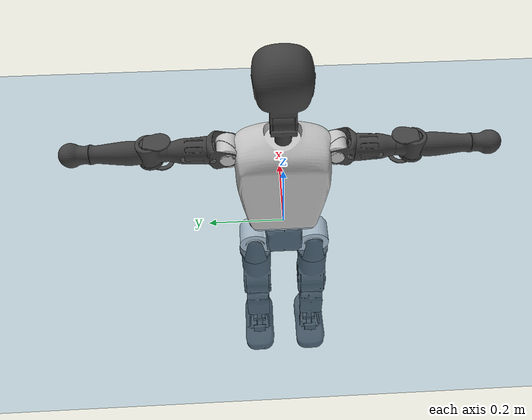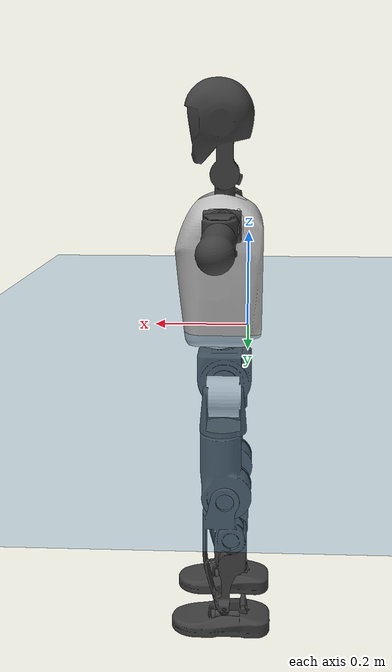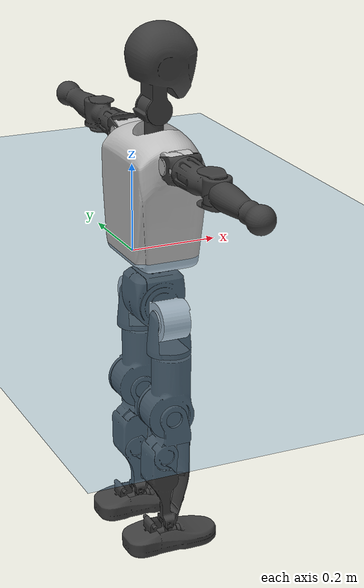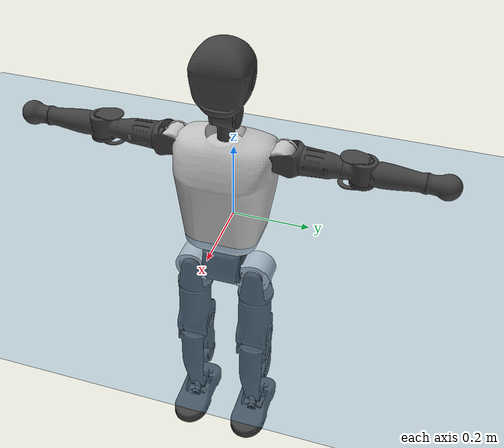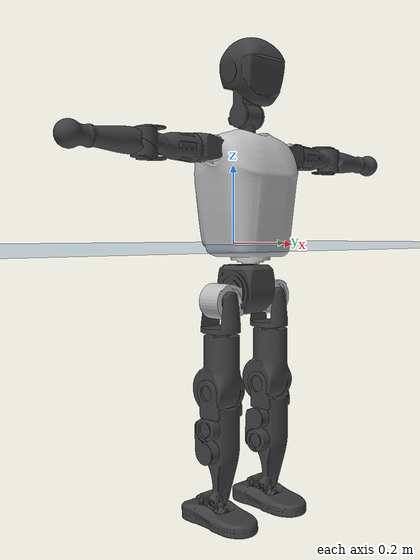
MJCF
<mujoco model="T1">
  <compiler angle="radian" assetdir="assets" balanceinertia="true" inertiafromgeom="false"/>

  <option timestep="0.005" density="1.2" viscosity="2e-05"/>

  <size nkey="1"/>

  <visual>
    <quality shadowsize="8192"/>
    <map shadowclip="0.5"/>
  </visual>

  <default>
    <default class="/">
      <joint armature="0.01" damping="0.01" frictionloss="0.1"/>
      <geom contype="0" conaffinity="0" group="1" solref="-1000 -80"/>
      <site size="0.01 0.005 0.005" group="5"/>
      <general forcelimited="true" biastype="affine" gainprm="25" biasprm="0 -25 -0.6"/>
      <default class="t1">
        <geom rgba="0.25 0.25 0.25 1"/>
        <default class="visual">
          <geom type="mesh" group="2"/>
        </default>
        <default class="collision">
          <geom group="3"/>
        </default>
        <default class="foot">
          <geom size="0.1115 0.05 0.015" type="box" condim="6" group="4" priority="1" solimp="0.015 1 0.015"/>
        </default>
        <default class="reward_collision_sphere">
          <geom group="5" rgba="1 0 0 1"/>
        </default>
      </default>
    </default>
  </default>

  <asset>
    <texture type="skybox" colorspace="auto" name="//unnamed_texture_0" builtin="gradient" rgb1="0.95 0.95 0.95" rgb2="0.95 0.95 0.95" width="100" height="600"/>
    <texture type="2d" colorspace="auto" name="texplane" builtin="checker" rgb1="0.345 0.575 0.748" rgb2="0.345 0.575 0.748" markrgb="1 1 1" width="512" height="512"/>
    <material name="MatPlane" class="/" texture="texplane" texuniform="true" texrepeat="2 2" specular="0.9"/>
    <mesh name="Trunk" class="/" file="Trunk.stl"/>
    <mesh name="H1" class="/" file="H1.stl"/>
    <mesh name="H2" class="/" file="H2.stl"/>
    <mesh name="AL1" class="/" file="AL1.stl"/>
    <mesh name="AL2" class="/" file="AL2.stl"/>
    <mesh name="AL3" class="/" file="AL3.stl"/>
    <mesh name="left_hand_link" class="/" file="left_hand_link.stl"/>
    <mesh name="AR1" class="/" file="AR1.stl"/>
    <mesh name="AR2" class="/" file="AR2.stl"/>
    <mesh name="AR3" class="/" file="AR3.stl"/>
    <mesh name="right_hand_link" class="/" file="right_hand_link.stl"/>
    <mesh name="Waist" class="/" file="Waist.stl"/>
    <mesh name="Hip_Pitch_Left" class="/" file="Hip_Pitch_Left.stl"/>
    <mesh name="Hip_Roll_Left" class="/" file="Hip_Roll_Left.stl"/>
    <mesh name="Hip_Yaw_Left" class="/" file="Hip_Yaw_Left.stl"/>
    <mesh name="Shank_Left" class="/" file="Shank_Left.stl"/>
    <mesh name="Ankle_Cross_Left" class="/" file="Ankle_Cross_Left.stl"/>
    <mesh name="left_foot_link" class="/" file="left_foot_link.stl"/>
    <mesh name="Hip_Pitch_Right" class="/" file="Hip_Pitch_Right.stl"/>
    <mesh name="Hip_Roll_Right" class="/" file="Hip_Roll_Right.stl"/>
    <mesh name="Hip_Yaw_Right" class="/" file="Hip_Yaw_Right.stl"/>
    <mesh name="Shank_Right" class="/" file="Shank_Right.stl"/>
    <mesh name="Ankle_Cross_Right" class="/" file="Ankle_Cross_Right.stl"/>
    <mesh name="right_foot_link" class="/" file="right_foot_link.stl"/>
  </asset>

  <worldbody>
    <geom name="floor" class="/" size="100 100 0.125" type="plane" group="0" material="MatPlane"/>
    <light name="toplight_shadow" class="/" pos="0 0 5" dir="0.0990148 0.0990148 -0.990148" type="directional" ambient="0.04 0.04 0.04" diffuse="0.55 0.55 0.55" specular="0.12 0.12 0.12"/>
    <light name="toplight_fill" class="/" pos="0 0 5" dir="0.0990148 0.0990148 -0.990148" type="directional" castshadow="false" ambient="0.04 0.04 0.04" diffuse="0.3 0.3 0.3" specular="0.08 0.08 0.08"/>
    <body name="trunk" childclass="t1" pos="0.000162457 -0.000797978 0.00170691" quat="1 8.46973e-06 -1.32053e-06 -2.00589e-05">
      <inertial pos="0.0455988 -0.00237167 0.110172" quat="0.999952 0.00338161 -0.00920729 0.000870029" mass="8.40864" diaginertia="0.034898 0.0277708 0.0697581"/>
      <joint name="//unnamed_joint_0" type="free" armature="0" damping="0" frictionloss="0"/>
      <geom name="//unnamed_geom_1" class="visual" rgba="0.76 0.76 0.76 1" mesh="Trunk"/>
      <geom name="//unnamed_geom_2" class="collision" size="0.0670396 0.0893862 0.134079" pos="0.0493423 0 0.125337" type="box"/>
      <geom name="//unnamed_geom_3" class="reward_collision_sphere" size="0.102794" pos="0.0493423 0 0.104448"/>
      <geom name="//unnamed_geom_4" class="reward_collision_sphere" size="0.0134079" pos="0.0493423 0.0692527 0"/>
      <geom name="//unnamed_geom_5" class="reward_collision_sphere" size="0.0134079" pos="0.0493423 -0.0692527 0"/>
      <geom name="//unnamed_geom_6" class="reward_collision_sphere" size="0.0134079" pos="0.0493423 0.0871769 0.188006"/>
      <geom name="//unnamed_geom_7" class="reward_collision_sphere" size="0.0134079" pos="0.0493423 -0.0871769 0.188006"/>
      <site name="imu" pos="-0.000161971 0.0114407 0.0029134" size="0.00893862"/>
      <camera name="track" pos="0 -1.62947 0" quat="0.707107 0.707107 0 0" mode="trackcom"/>
      <camera name="ego_camera" pos="0.100329 0 0.43868" quat="-0.5 -0.5 0.5 0.5"/>
      <body name="H1" pos="0.0512575 -0.00105262 0.254306" quat="0.999999 0.000167902 0.000831959 -0.000654518">
        <inertial pos="-0.00133006 -0.000463657 0.0594119" quat="0.763979 -0.00919102 -0.000904465 0.645175" mass="0.311495" diaginertia="9.17457e-05 8.11247e-05 0.0001913"/>
        <joint name="AAHead_yaw" pos="0 0 0" axis="-0.00442643 -1.27319e-05 0.99999" range="-1.58125 1.62203" armature="0.00869886" damping="0.000322402" frictionloss="0.085287"/>
        <geom name="//unnamed_geom_8" class="visual" mesh="H1"/>
        <body name="H2" pos="-0.000384 0.000417036 0.0617975" quat="0.999999 0.00113458 -0.000623155 -0.000232395">
          <inertial pos="0.00584895 0.00132274 0.104552" quat="0.989038 0.104483 -0.070963 -0.0764889" mass="0.450026" diaginertia="0.000765847 0.000692628 0.002099"/>
          <joint name="Head_pitch" pos="0 0 0" axis="-0.00624973 -0.99997 0.00452155" range="-1.24254 0.351366" armature="0.00920759" damping="0.00700395" frictionloss="0.0909338"/>
          <geom name="//unnamed_geom_9" class="visual" mesh="H2"/>
          <geom name="//unnamed_geom_10" class="collision" size="0.0715089" pos="0.00822372 0 0.114892"/>
          <geom name="//unnamed_geom_11" class="reward_collision_sphere" size="0.0804476" pos="0.0164474 0 0.104448"/>
        </body>
      </body>
      <body name="AL1" pos="0.0492887 0.0881691 0.227982" quat="1 -5.23303e-05 0.000362071 -0.000384154">
        <inertial pos="-0.00161147 0.0358189 -1.00574e-05" quat="0.493721 0.499377 -0.506976 0.499838" mass="0.373208" diaginertia="0.000505044 0.000454894 0.000354294"/>
        <joint name="Left_Shoulder_Pitch" pos="0 0 0" axis="-0.00309376 0.99999 0.00337761" range="-3.25614 1.21633" armature="0.00830708" damping="0.00597391" frictionloss="0.0905031"/>
        <geom name="//unnamed_geom_12" class="visual" rgba="0.76 0.76 0.76 1" mesh="AL1"/>
        <body name="AL2" pos="0.00191705 0.0396267 0.000260793" quat="0.999999 -0.0011297 -0.000248347 0.000247805">
          <inertial pos="0.00584713 0.0311368 -0.000379498" quat="0.488244 0.51097 -0.489152 0.511134" mass="0.110239" diaginertia="0.000146111 0.000119807 0.000211191"/>
          <joint name="Left_Shoulder_Roll" pos="0 0 0" axis="-0.999997 -0.000384063 0.0024636" range="-1.57044 1.75837" armature="0.00943771" damping="0.0148624" frictionloss="0.089922"/>
          <geom name="//unnamed_geom_13" class="visual" mesh="AL2"/>
          <body name="AL3" pos="0.000295692 0.0500628 -0.000214022" quat="0.999999 -0.00106909 0.000181509 0.000436556">
            <inertial pos="0.00217192 0.068743 -0.000543968" quat="0.710395 0.703702 0.0118756 0.00100093" mass="0.753651" diaginertia="0.0050659 0.00490261 0.000802689"/>
            <joint name="Left_Elbow_Pitch" pos="0 0 0" axis="0.00402982 -0.999986 -0.00339343" range="-2.28443 2.32109" armature="0.00985178" damping="0.00971108" frictionloss="0.10113"/>
            <geom name="//unnamed_geom_14" class="visual" mesh="AL3"/>
            <geom name="//unnamed_geom_15" class="collision" size="0.0268159 0.0670396" pos="0 0.0407369 0" quat="0.707105 0.707108 0 0" type="cylinder"/>
            <geom name="//unnamed_geom_16" class="reward_collision_sphere" size="0.032179"/>
            <body name="left_hand_link" pos="0.000203825 0.119456 0.000199993" quat="0.999999 0.000872895 0.000384044 -0.000847735">
              <inertial pos="0.000921638 0.0908407 0.000964631" quat="0.707338 0.706857 -0.00513878 -0.00031482" mass="0.232811" diaginertia="0.00315958 0.00297732 0.000259092"/>
              <joint name="Left_Elbow_Yaw" pos="0 0 0" axis="0.00877677 0.00960867 0.999915" range="-2.44295 0.053378" armature="0.00809952" damping="0.000987455" frictionloss="0.0901031"/>
              <geom name="//unnamed_geom_17" class="visual" mesh="left_hand_link"/>
              <geom name="//unnamed_geom_18" class="collision" size="0.0268159 0.0782129" pos="0 0.105916 0" quat="0.707105 0.707108 0 0" type="cylinder"/>
              <geom name="//unnamed_geom_19" class="reward_collision_sphere" size="0.0446931"/>
              <geom name="//unnamed_geom_20" class="reward_collision_sphere" size="0.0312852" pos="0 0.0896211 0"/>
              <geom name="//unnamed_geom_21" class="reward_collision_sphere" size="0.0312852" pos="0 0.175169 0"/>
            </body>
          </body>
        </body>
      </body>
      <body name="AR1" pos="0.0478514 -0.0830364 0.225852" quat="1 0.000220098 0.000126442 -0.000106452">
        <inertial pos="-0.00150396 -0.0391806 0.000538748" quat="0.502839 0.493281 -0.503678 0.500135" mass="0.380028" diaginertia="0.000511232 0.000463615 0.000361497"/>
        <joint name="Right_Shoulder_Pitch" pos="0 0 0" axis="-0.0146969 -0.999891 0.00120733" range="-1.22736 3.35962" armature="0.00932996" damping="0.00596563" frictionloss="0.0778415"/>
        <geom name="//unnamed_geom_22" class="visual" rgba="0.76 0.76 0.76 1" mesh="AR1"/>
        <body name="AR2" pos="0.00212129 -0.0391488 -0.001003" quat="1 0.000123241 -3.86641e-05 6.71635e-05">
          <inertial pos="0.00488434 -0.0311562 -6.95704e-05" quat="0.51191 0.490034 -0.513271 0.484115" mass="0.121589" diaginertia="0.000156226 0.000127644 0.00022495"/>
          <joint name="Right_Shoulder_Roll" pos="0 0 0" axis="-1 0.000277922 0.000724366" range="-1.74487 1.60359" armature="0.00922198" damping="0" frictionloss="0.0982974"/>
          <geom name="//unnamed_geom_23" class="visual" mesh="AR2"/>
          <body name="AR3" pos="-0.00262709 -0.0507436 -0.00121574" quat="1 9.68375e-06 4.50931e-06 8.05668e-06">
            <inertial pos="-8.90552e-05 -0.0678554 0.000742813" quat="0.706643 0.70757 -0.000199529 0.000480712" mass="0.769129" diaginertia="0.004994 0.0047439 0.000800351"/>
            <joint name="Right_Elbow_Pitch" pos="0 0 0" axis="-0.00175444 0.999995 -0.00248013" range="-2.3075 2.22463" armature="0.00872186" damping="0.0162142" frictionloss="0.0902754"/>
            <geom name="//unnamed_geom_24" class="visual" mesh="AR3"/>
            <geom name="//unnamed_geom_25" class="collision" size="0.0268159 0.0670396" pos="0 -0.0407369 0" quat="0.707105 0.707108 0 0" type="cylinder"/>
            <geom name="//unnamed_geom_26" class="reward_collision_sphere" size="0.032179"/>
            <body name="right_hand_link" pos="-0.00085984 -0.119607 0.00115003" quat="1 0.00011356 -0.000156797 0.000276628">
              <inertial pos="-0.000206573 -0.0890018 -0.00148556" quat="0.707962 0.706237 -0.000977925 -0.00417229" mass="0.223325" diaginertia="0.00302342 0.00290168 0.000264536"/>
              <joint name="Right_Elbow_Yaw" pos="0 0 0" axis="0.0106332 2.09318e-05 0.999943" range="-0.0160376 2.48246" armature="0.0090414" damping="0.00738749" frictionloss="0.0882753"/>
              <geom name="//unnamed_geom_27" class="visual" mesh="right_hand_link"/>
              <geom name="//unnamed_geom_28" class="collision" size="0.0268159 0.0782129" pos="0 -0.105916 0" quat="0.707105 0.707108 0 0" type="cylinder"/>
              <geom name="//unnamed_geom_29" class="reward_collision_sphere" size="0.0446931"/>
              <geom name="//unnamed_geom_30" class="reward_collision_sphere" size="0.0312852" pos="0 -0.0896211 0"/>
              <geom name="//unnamed_geom_31" class="reward_collision_sphere" size="0.0312852" pos="0 -0.175169 0"/>
            </body>
          </body>
        </body>
      </body>
      <body name="Waist" pos="0.0490293 -0.00247943 -0.121362" quat="0.999999 -0.00058076 0.000810978 0.000196794">
        <inertial pos="0.00119776 -0.00288943 0.00697776" quat="0.983664 0.000581021 -0.179997 0.00246019" mass="1.82031" diaginertia="0.00195589 0.00183836 0.0057565"/>
        <joint name="Waist" pos="0 0 0" axis="0.00579671 0.00121569 0.999982" range="-1.5774 1.56715" armature="0.00846204" damping="0.000153444" frictionloss="0.0780206"/>
        <geom name="//unnamed_geom_32" class="visual" mesh="Waist"/>
        <body name="Hip_Pitch_Left" pos="0.000950967 0.0842693 0.00184" quat="0.999999 -0.000265744 -0.000478251 0.00115774">
          <inertial pos="0.00130862 -0.00516669 -0.0192218" quat="0.975219 0.220757 0.0145255 0.00179859" mass="0.727089" diaginertia="0.000687809 0.000541629 0.00156216"/>
          <joint name="Left_Hip_Pitch" pos="0 0 0" axis="-0.00832074 0.999958 0.00395652" range="-1.78789 1.5527" armature="0.00946924" damping="0.0131726" frictionloss="0.0864213"/>
          <geom name="//unnamed_geom_33" class="visual" rgba="0.76 0.76 0.76 1" mesh="Hip_Pitch_Left"/>
          <body name="Hip_Roll_Left" pos="0.00245776 0.000428883 -0.0204116" quat="0.999999 0.0009517 -9.34232e-05 -0.000948251">
            <inertial pos="-0.0012213 -0.00220664 -0.0572443" quat="0.708665 -0.00249851 0.00654376 0.70551" mass="0.273942" diaginertia="0.00063153 0.000535676 0.000640903"/>
            <joint name="Left_Hip_Roll" pos="0 0 0" axis="-0.999929 -0.00538539 -0.0106057" range="-1.59959 0.25135" armature="0.00994639" damping="0.0073342" frictionloss="0.0877855"/>
            <geom name="//unnamed_geom_34" class="visual" mesh="Hip_Roll_Left"/>
            <geom name="//unnamed_geom_35" class="reward_collision_sphere" size="0.0491624"/>
            <body name="Hip_Yaw_Left" pos="0.00257644 -0.000778721 -0.0839777" quat="0.999999 0.00108801 -0.000933042 -0.000170531">
              <inertial pos="-0.00631522 3.07276e-05 -0.093581" quat="0.696658 -0.032812 -0.0287133 0.716077" mass="1.55688" diaginertia="0.00965029 0.00919992 0.00333556"/>
              <joint name="Left_Hip_Yaw" pos="0 0 0" axis="-0.00300732 0.00138326 -0.999995" range="-1.02541 0.95595" armature="0.00877243" damping="0.0155743" frictionloss="0.0889406"/>
              <geom name="//unnamed_geom_36" class="visual" mesh="Hip_Yaw_Left"/>
              <geom name="//unnamed_geom_37" class="collision" size="0.0446931 0.0715089" type="cylinder"/>
              <body name="Shank_Left" pos="-0.0106394 0.000564662 -0.14324" quat="1 0.000134603 7.9561e-05 -3.06954e-05">
                <inertial pos="-0.00276517 -0.00203403 -0.129539" quat="0.997323 0.00108885 -0.0277871 0.0676282" mass="1.22184" diaginertia="0.0130421 0.012068 0.00225552"/>
                <joint name="Left_Knee_Pitch" pos="0 0 0" axis="0.000399778 0.999998 -0.00169933" range="0.00585504 2.33399" armature="0.0091034" damping="0.0103679" frictionloss="0.0894782"/>
                <geom name="//unnamed_geom_38" class="visual" mesh="Shank_Left"/>
                <geom name="//unnamed_geom_39" class="collision" size="0.0446931 0.0670396" pos="0 0 -0.125337" type="cylinder"/>
                <geom name="//unnamed_geom_40" class="reward_collision_sphere" size="0.058101"/>
                <body name="Ankle_Cross_Left" pos="-0.000757052 -0.000944411 -0.290504" quat="1 -0.000287248 -9.37363e-05 7.94896e-05">
                  <inertial pos="-0.0013822 -0.000889493 -0.00859387" quat="0.44342 0.551567 0.550621 0.442685" mass="0.0542969" diaginertia="1.10072e-05 9.36627e-06 1.42689e-05"/>
                  <joint name="Left_Ankle_Pitch" pos="0 0 0" axis="0.000160598 0.999998 0.00197541" range="-0.851586 0.330991" armature="0.00926064" damping="0.00982491" frictionloss="0.0829631"/>
                  <geom name="//unnamed_geom_41" class="visual" mesh="Ankle_Cross_Left"/>
                  <body name="left_foot_link" pos="-0.00116 0.00197057 -0.012296" quat="1 -0.000237458 0.00038657 0.000148711">
                    <inertial pos="-0.000953908 0.0020176 -0.00967958" quat="-0.00245596 0.619278 -0.00359614 0.78516" mass="0.467801" diaginertia="0.00103445 0.000848832 0.00267892"/>
                    <joint name="Left_Ankle_Roll" pos="0 0 0" axis="-0.999971 0.00284243 -0.00712066" range="-0.424616 0.491862" armature="0.00999053" damping="0.0105804" frictionloss="0.0855804"/>
                    <geom name="//unnamed_geom_42" class="visual" mesh="left_foot_link"/>
                    <geom name="left_foot" class="foot" size="0.109585 0.0488936 0.0142451" pos="0.00822372 0 -0.0156671"/>
                    <geom name="//unnamed_geom_44" class="reward_collision_sphere" size="0.0464808" pos="0.00822372 0 -0.0156671"/>
                    <geom name="//unnamed_geom_45" class="reward_collision_sphere" size="0.0268159" pos="0.0781253 -0.018739 -0.0156671"/>
                    <geom name="//unnamed_geom_46" class="reward_collision_sphere" size="0.0268159" pos="-0.057566 -0.018739 -0.0156671"/>
                    <site name="left_foot" class="foot" pos="0.00822372 0 -0.0156671" size="0.00893862"/>
                  </body>
                </body>
              </body>
            </body>
          </body>
        </body>
        <body name="Hip_Pitch_Right" pos="0.00161485 -0.0866734 -0.00173626" quat="1 -6.27513e-05 2.43491e-05 2.34347e-05">
          <inertial pos="-0.00189715 0.00585991 -0.018499" quat="0.973002 -0.230296 0.0144074 -0.00472464" mass="0.735075" diaginertia="0.000681826 0.000526595 0.00155708"/>
          <joint name="Right_Hip_Pitch" pos="0 0 0" axis="-0.00326034 -0.999991 0.00262077" range="-1.59205 1.7852" armature="0.0101255" damping="0.0113795" frictionloss="0.0894869"/>
          <geom name="//unnamed_geom_47" class="visual" rgba="0.76 0.76 0.76 1" mesh="Hip_Pitch_Right"/>
          <body name="Hip_Roll_Right" pos="4.32389e-05 -0.000927855 -0.0189972" quat="1 -3.43772e-05 -0.00010145 -0.000116416">
            <inertial pos="0.00154643 -0.00305323 -0.0576224" quat="0.704628 -0.0159483 -0.000259989 0.709397" mass="0.263511" diaginertia="0.000632025 0.000530024 0.000618514"/>
            <joint name="Right_Hip_Roll" pos="0 0 0" axis="-0.999993 0.00377501 -0.000296339" range="-0.206783 1.57073" armature="0.00904158" damping="0.00249609" frictionloss="0.0814466"/>
            <geom name="//unnamed_geom_48" class="visual" mesh="Hip_Roll_Right"/>
            <geom name="//unnamed_geom_49" class="reward_collision_sphere" size="0.0491624"/>
            <body name="Hip_Yaw_Right" pos="0.00243011 -0.00118602 -0.0851027" quat="0.999999 -0.000300553 0.000412554 -0.000936371">
              <inertial pos="-0.00483576 -0.00309191 -0.0935936" quat="0.714039 -0.0303371 -0.0299685 0.698806" mass="1.50846" diaginertia="0.00940994 0.00882347 0.00315969"/>
              <joint name="Right_Hip_Yaw" pos="0 0 0" axis="0.00718898 -0.00506839 -0.999961" range="-1.01516 1.04594" armature="0.00934088" damping="0.00585708" frictionloss="0.0897215"/>
              <geom name="//unnamed_geom_50" class="visual" mesh="Hip_Yaw_Right"/>
              <geom name="//unnamed_geom_51" class="collision" size="0.0446931 0.0715089" type="cylinder"/>
              <body name="Shank_Right" pos="-0.0109176 -0.0012825 -0.13896" quat="1 -0.000275786 0.000106323 -0.000116365">
                <inertial pos="-0.00435718 0.000691351 -0.127963" quat="0.999356 0.0022629 -0.0235675 -0.0269548" mass="1.2422" diaginertia="0.0124843 0.0123611 0.00238614"/>
                <joint name="Right_Knee_Pitch" pos="0 0 0" axis="-0.000121751 -1 -7.98426e-06" range="-2.33958 -0.0139094" armature="0.00901919" damping="0.00342357" frictionloss="0.0911448"/>
                <geom name="//unnamed_geom_52" class="visual" mesh="Shank_Right"/>
                <geom name="//unnamed_geom_53" class="collision" size="0.0446931 0.0670396" pos="0 0 -0.125337" type="cylinder"/>
                <geom name="//unnamed_geom_54" class="reward_collision_sphere" size="0.058101"/>
                <body name="Ankle_Cross_Right" pos="0.00107827 -0.00143929 -0.292768" quat="1 -0.000420666 0.000402966 0.000749414">
                  <inertial pos="-0.00188756 0.000135299 -0.0108834" quat="0.435174 0.558039 0.54595 0.448503" mass="0.0504944" diaginertia="1.02408e-05 9.1466e-06 1.32423e-05"/>
                  <joint name="Right_Ankle_Pitch" pos="0 0 0" axis="0.000199449 -0.999938 -0.0110924" range="-0.321387 0.853641" armature="0.00906932" damping="0" frictionloss="0.0807813"/>
                  <geom name="//unnamed_geom_55" class="visual" mesh="Ankle_Cross_Right"/>
                  <body name="right_foot_link" pos="-0.000811721 -0.000765918 -0.0128558" quat="1 -2.79761e-05 -0.000313037 8.04356e-05">
                    <inertial pos="-0.00264108 -0.00174957 -0.00947073" quat="0.000384094 0.624027 0.0055728 0.781383" mass="0.489645" diaginertia="0.00102803 0.000866436 0.00270823"/>
                    <joint name="Right_Ankle_Roll" pos="0 0 0" axis="-1 -0.00079766 0.000255757" range="-0.420855 0.44738" armature="0.00897254" damping="0.0210976" frictionloss="0.0912916"/>
                    <geom name="//unnamed_geom_56" class="visual" mesh="right_foot_link"/>
                    <geom name="right_foot" class="foot" size="0.0950871 0.0458144 0.0132486" pos="0.00822372 0 -0.0156671"/>
                    <geom name="//unnamed_geom_58" class="reward_collision_sphere" size="0.0357545"/>
                    <geom name="//unnamed_geom_59" class="reward_collision_sphere" size="0.0268159" pos="0.00822372 0 -0.0156671"/>
                    <geom name="//unnamed_geom_60" class="reward_collision_sphere" size="0.0268159" pos="0.0781253 0.018739 -0.0156671"/>
                    <geom name="//unnamed_geom_61" class="reward_collision_sphere" size="0.0268159" pos="-0.057566 0.018739 -0.0156671"/>
                    <site name="right_foot" class="foot" pos="0.00822372 0 -0.0156671" size="0.00893862"/>
                  </body>
                </body>
              </body>
            </body>
          </body>
        </body>
      </body>
    </body>
  </worldbody>

  <contact>
    <pair class="/" geom1="floor" geom2="left_foot" name="//unnamed_contact_0"/>
    <pair class="/" geom1="floor" geom2="right_foot" name="//unnamed_contact_1"/>
  </contact>

  <actuator>
    <general name="AAHead_yaw" class="/" joint="AAHead_yaw" forcerange="-6.56435 6.56435" gainprm="21.9651" biasprm="0 -21.9651 -0.512871"/>
    <general name="Head_pitch" class="/" joint="Head_pitch" forcerange="-6.61129 6.61129" gainprm="21.9651" biasprm="0 -21.9651 -0.512871"/>
    <general name="Left_Shoulder_Pitch" class="/" joint="Left_Shoulder_Pitch" forcerange="-16.3593 16.3593" gainprm="21.9651" biasprm="0 -21.9651 -0.512871"/>
    <general name="Left_Shoulder_Roll" class="/" joint="Left_Shoulder_Roll" forcerange="-16.0641 16.0641" gainprm="21.9651" biasprm="0 -21.9651 -0.512871"/>
    <general name="Left_Elbow_Pitch" class="/" joint="Left_Elbow_Pitch" forcerange="-17.6298 17.6298" gainprm="21.9651" biasprm="0 -21.9651 -0.512871"/>
    <general name="Left_Elbow_Yaw" class="/" joint="Left_Elbow_Yaw" forcerange="-15.5455 15.5455" gainprm="21.9651" biasprm="0 -21.9651 -0.512871"/>
    <general name="Right_Shoulder_Pitch" class="/" joint="Right_Shoulder_Pitch" forcerange="-14.6102 14.6102" gainprm="21.9651" biasprm="0 -21.9651 -0.512871"/>
    <general name="Right_Shoulder_Roll" class="/" joint="Right_Shoulder_Roll" forcerange="-15.84 15.84" gainprm="21.9651" biasprm="0 -21.9651 -0.512871"/>
    <general name="Right_Elbow_Pitch" class="/" joint="Right_Elbow_Pitch" forcerange="-17.651 17.651" gainprm="21.9651" biasprm="0 -21.9651 -0.512871"/>
    <general name="Right_Elbow_Yaw" class="/" joint="Right_Elbow_Yaw" forcerange="-15.7102 15.7102" gainprm="21.9651" biasprm="0 -21.9651 -0.512871"/>
    <general name="Waist" class="/" joint="Waist" forcerange="-27.7406 27.7406" gainprm="21.9651" biasprm="0 -21.9651 -0.512871"/>
    <general name="Left_Hip_Pitch" class="/" joint="Left_Hip_Pitch" forcerange="-41.4732 41.4732" gainprm="21.9651" biasprm="0 -21.9651 -0.512871"/>
    <general name="Left_Hip_Roll" class="/" joint="Left_Hip_Roll" forcerange="-29.2112 29.2112" gainprm="21.9651" biasprm="0 -21.9651 -0.512871"/>
    <general name="Left_Hip_Yaw" class="/" joint="Left_Hip_Yaw" forcerange="-24.1939 24.1939" gainprm="21.9651" biasprm="0 -21.9651 -0.512871"/>
    <general name="Left_Knee_Pitch" class="/" joint="Left_Knee_Pitch" forcerange="-56.7005 56.7005" gainprm="21.9651" biasprm="0 -21.9651 -0.512871"/>
    <general name="Left_Ankle_Pitch" class="/" joint="Left_Ankle_Pitch" forcerange="-16.1337 16.1337" gainprm="21.9651" biasprm="0 -21.9651 -0.512871"/>
    <general name="Left_Ankle_Roll" class="/" joint="Left_Ankle_Roll" forcerange="-13.163 13.163" gainprm="21.9651" biasprm="0 -21.9651 -0.512871"/>
    <general name="Right_Hip_Pitch" class="/" joint="Right_Hip_Pitch" forcerange="-40.6311 40.6311" gainprm="21.9651" biasprm="0 -21.9651 -0.512871"/>
    <general name="Right_Hip_Roll" class="/" joint="Right_Hip_Roll" forcerange="-26.3481 26.3481" gainprm="21.9651" biasprm="0 -21.9651 -0.512871"/>
    <general name="Right_Hip_Yaw" class="/" joint="Right_Hip_Yaw" forcerange="-26.483 26.483" gainprm="21.9651" biasprm="0 -21.9651 -0.512871"/>
    <general name="Right_Knee_Pitch" class="/" joint="Right_Knee_Pitch" forcerange="-57.9168 57.9168" gainprm="21.9651" biasprm="0 -21.9651 -0.512871"/>
    <general name="Right_Ankle_Pitch" class="/" joint="Right_Ankle_Pitch" forcerange="-18.3702 18.3702" gainprm="21.9651" biasprm="0 -21.9651 -0.512871"/>
    <general name="Right_Ankle_Roll" class="/" joint="Right_Ankle_Roll" forcerange="-12.1388 12.1388" gainprm="21.9651" biasprm="0 -21.9651 -0.512871"/>
  </actuator>

  <sensor>
    <gyro site="imu" name="imu_angular_velocity"/>
    <velocimeter site="imu" name="imu_linear_velocity"/>
    <framelinvel objtype="site" objname="left_foot" name="left_foot_global_linear_velocity"/>
    <framelinvel objtype="site" objname="right_foot" name="right_foot_global_linear_velocity"/>
  </sensor>

  <keyframe>
    <key name="home" qpos="0 0 0.6385 1 0 0 0 0 0 0 1.4 0 -0.4 0 -1.4 0 0.4 0 -0.4 0 0 0.8 -0.4 0 0.4 0 0 -0.8 0.4 0"/>
  </keyframe>
</mujoco>
